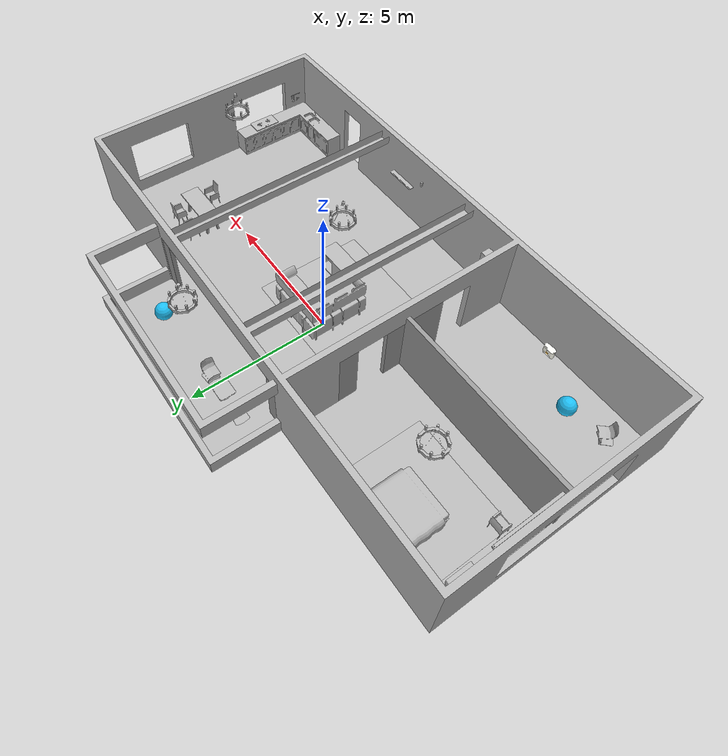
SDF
<sdf version="1.6">
 <world name="default">
  <gravity>0 0 -9.8</gravity>
  <magnetic_field>6e-06 2.3e-05 -4.2e-05</magnetic_field>
  <atmosphere type="adiabatic"/>
  <physics name="default_physics" default="0" type="ode">
   <max_step_size>0.001</max_step_size>
   <real_time_factor>1</real_time_factor>
   <real_time_update_rate>1000</real_time_update_rate>
  </physics>
  <scene>
   <ambient>0.4 0.4 0.4 1</ambient>
   <background>0.7 0.7 0.7 1</background>
   <shadows>false</shadows>
   <grid>false</grid>
   <origin_visual>false</origin_visual>
  </scene>
  <spherical_coordinates>
   <surface_model>EARTH_WGS84</surface_model>
   <latitude_deg>0</latitude_deg>
   <longitude_deg>0</longitude_deg>
   <elevation>0</elevation>
   <heading_deg>0</heading_deg>
  </spherical_coordinates>
  <model name="AirconditionerA_01_001">
   <include><uri>model://aws_robomaker_residential_AirconditionerA_01</uri></include>
   <pose>-9.199410 2.411230 2.084544 0 -0 0</pose>
  </model>
  <model name="AirconditionerB_01_001">
   <include><uri>model://aws_robomaker_residential_AirconditionerB_01</uri></include>
   <pose>-2.004656 -5.226610 0.003485 0 -0 0</pose>
  </model>
  <model name="Ball_01_001">
   <include><uri>model://aws_robomaker_residential_Ball_01</uri></include>
   <pose>3.295503 4.225674 0.318684 0 -0 0</pose>
  </model>
  <model name="Ball_01_003">
   <include><uri>model://aws_robomaker_residential_Ball_01</uri></include>
   <pose>-6.945503 -4.22174 0.318684 0 -0 0</pose>
  </model>
  <model name="Bed_01_001">
   <include><uri>model://aws_robomaker_residential_Bed_01</uri></include>
   <pose>-6.678232 2.030560 -0.000010 0 -0 0</pose>
  </model>
  <model name="NightStand_01_001">
   <include><uri>model://aws_robomaker_residential_NightStand_01</uri></include>
   <pose>-8.501616 2.860420 0.005258 -0.000002 0 0</pose>
  </model>
  <model name="NightStand_01_002">
   <include><uri>model://aws_robomaker_residential_NightStand_01</uri></include>
   <pose>-4.842234 2.860420 0.005256 0 0.000002 0</pose>
  </model>
  <model name="Board_01_001">
   <include><uri>model://aws_robomaker_residential_Board_01</uri></include>
   <pose>2.779073 -5.392703 1.538173 0 -0 0</pose>
  </model>
  <model name="ChairA_01_001">
   <include><uri>model://aws_robomaker_residential_ChairA_01</uri></include>
   <pose>7.11516 0.209028 0.024685 1e-06 -0 -1.55607</pose>
  </model>
  <model name="ChairA_01_003">
   <include><uri>model://aws_robomaker_residential_ChairA_01</uri></include>
   <pose>6.06678 1.68075 0.01 0 -0 1.56986</pose>
  </model>
  <model name="ChairA_01_004">
   <include><uri>model://aws_robomaker_residential_ChairA_01</uri></include>
   <pose>7.00277 1.67074 0 0 -0 1.52363</pose>
  </model>
  <model name="ChairA_01_005">
   <include><uri>model://aws_robomaker_residential_ChairA_01</uri></include>
   <pose>-8.500940 0.033744 0 0 0 1.57</pose>
  </model>
  <model name="ChairD_01_001">
   <include><uri>model://aws_robomaker_residential_ChairD_01</uri></include>
   <pose>-1.380775 4.104456 0 0 -0 0</pose>
  </model>
  <model name="ChairD_01_002">
   <include><uri>model://aws_robomaker_residential_ChairD_01</uri></include>
   <pose>0.325214 4.104456 0 0 -0 -3.138741</pose>
  </model>
  <model name="ChairD_01_003">
   <include><uri>model://aws_robomaker_residential_ChairD_01</uri></include>
   <pose>-8.270775 -4.504456 0 0 -0 0.869673</pose>
  </model>
  <model name="Chandelier_01_001">
   <include><uri>model://aws_robomaker_residential_Chandelier_01</uri></include>
   <pose>1.221061 4.155740 3 0 -0 0</pose>
  </model>
  <model name="Chandelier_01_002">
   <include><uri>model://aws_robomaker_residential_Chandelier_01</uri></include>
   <pose>-6.451061 1.069937 3 0 -0 0</pose>
  </model>
  <model name="Chandelier_01_003">
   <include><uri>model://aws_robomaker_residential_Chandelier_01</uri></include>
   <pose>7.824061 -1.59 3 0 -0 0</pose>
  </model>
  <model name="Chandelier_01_004">
   <include><uri>model://aws_robomaker_residential_Chandelier_01</uri></include>
   <pose>1.221061 -1.592040 3 0 -0 0</pose>
  </model>
  <model name="Carpet_01_001">
   <include><uri>model://aws_robomaker_residential_Carpet_01</uri></include>
   <pose>0.785050 -1.106647 0.001106 0 -0 0</pose>
  </model>
  <model name="Carpet_01_002">
   <include><uri>model://aws_robomaker_residential_Carpet_01</uri></include>
   <pose>-6.674063 1.37515 0.000585 0 -0 1.57662</pose>
  </model>
  <model name="CoffeeTable_01_001">
   <include><uri>model://aws_robomaker_residential_CoffeeTable_01</uri></include>
   <pose>1.512301 -1.733438 0.041983 0.000000 0.000000 0.01000</pose>
  </model>
  <model name="CookingBench_01_001">
   <include><uri>model://aws_robomaker_residential_CookingBench_01</uri></include>
   <pose>9.038383 -3.351140 0.903610 0 -0 3.137133</pose>
   <static>true</static>
  </model>
  <model name="Curtain_01_001">
   <include><uri>model://aws_robomaker_residential_Curtain_01</uri></include>
   <pose>-9.172642 0.203760 0 0 -0 0</pose>
  </model>
  <model name="KitchenTable_01_001">
   <include><uri>model://aws_robomaker_residential_KitchenTable_01</uri></include>
   <pose>6.55269 0.951173 -0.000006 0 -0 -1.564130</pose>
  </model>
  <model name="BalconyTable_01_001">
   <include><uri>model://aws_robomaker_residential_BalconyTable_01</uri></include>
   <pose>-0.556240 4.111241 0 0 -0 0</pose>
  </model>
  <model name="HouseWallB_01_001">
   <include><uri>model://aws_robomaker_residential_HouseWallB_01</uri></include>
  </model>
  <model name="FloorB_01_001"><include><uri>model://aws_robomaker_residential_FloorB_01</uri></include></model>
  <model name="KitchenCabinet_01_001">
   <include><uri>model://aws_robomaker_residential_KitchenCabinet_01</uri></include>
   <pose>8.002009 -3.836509 0.012068 0 -0 -3.140001</pose>
  </model>
  <model name="KitchenUtensils_01_001">
   <include><uri>model://aws_robomaker_residential_KitchenUtensils_01</uri></include>
   <pose>9.285478 -5.021261 1.141805 0 -0 0</pose>
  </model>
  <model name="LightC_01_001">
   <include><uri>model://aws_robomaker_residential_LightC_01</uri></include>
   <pose>1.769567 -5.4443710 2.000000 0 -0 0</pose>
  </model>
  <model name="LightC_01_002">
   <include><uri>model://aws_robomaker_residential_LightC_01</uri></include>
   <pose>-0.138245 -5.4443710 2.000000 0 -0 0</pose>
  </model>
  <model name="SofaC_01_001">
   <include><uri>model://aws_robomaker_residential_SofaC_01</uri></include>
   <pose>0.775898 -0.411153 0.065992 -0.000464 -0.000071 0.005614</pose>
  </model>
  <light name="LivingRoom_CeilingLight_0" type="point">
   <pose>1.194296 4.155759 2.2 0 -0 0</pose>
   <diffuse>0.5 0.5 0.5 1</diffuse>
   <specular>0.1 0.1 0.1 1</specular>
   <attenuation>
    <range>20</range>
    <constant>0.32</constant>
    <linear>0.01</linear>
    <quadratic>0.03</quadratic>
   </attenuation>
   <cast_shadows>0</cast_shadows>
   <direction>0 0 -1</direction>
  </light>
  <light name="LivingRoom_CeilingLight_1" type="point">
   <pose>1.194296 -1.589959 2.2 0 -0 0</pose>
   <diffuse>0.5 0.5 0.5 1</diffuse>
   <specular>0.1 0.1 0.1 1</specular>
   <attenuation>
    <range>20</range>
    <constant>0.05</constant>
    <linear>0.01</linear>
    <quadratic>0.09</quadratic>
   </attenuation>
   <cast_shadows>0</cast_shadows>
   <direction>0 0 -1</direction>
  </light>
  <light name="LivingRoom_WallLight_0" type="point">
   <pose>1.76956 -5.444370 2.2 0 -0 0</pose>
   <diffuse>0.24 0.24 0.24 1</diffuse>
   <specular>0.1 0.1 0.1 1</specular>
   <attenuation>
    <range>20</range>
    <constant>0.12</constant>
    <linear>0.00</linear>
    <quadratic>0.03</quadratic>
   </attenuation>
   <direction>0 0 -1</direction>
  </light>
  <light name="LivingRoom_WallLight_1" type="point">
   <pose>-0.13826 -5.444370 2.2 0 -0 0</pose>
   <diffuse>0.24 0.24 0.24 1</diffuse>
   <specular>0.1 0.1 0.1 1</specular>
   <attenuation>
    <range>20</range>
    <constant>0.12</constant>
    <linear>0.00</linear>
    <quadratic>0.03</quadratic>
   </attenuation>
   <direction>0 0 -1</direction>
  </light>
  <light name="BedRoom_CeilingLight_0" type="point">
   <pose>-6.451061 1.126176 2.091116 0 -0 0</pose>
   <diffuse>0.5 0.5 0.5 1</diffuse>
   <specular>0.1 0.1 0.1 1</specular>
   <attenuation>
    <range>20</range>
    <constant>0.32</constant>
    <linear>0.01</linear>
    <quadratic>0.03</quadratic>
   </attenuation>
   <cast_shadows>0</cast_shadows>
   <direction>0 0 -1</direction>
  </light>
  <light name="BedRoom_CeilingLight_1" type="point">
   <pose>-6.352945 -3.416286 2.091116 0 -0 0</pose>
   <diffuse>0.5 0.5 0.5 1</diffuse>
   <specular>0.1 0.1 0.1 1</specular>
   <attenuation>
    <range>20</range>
    <constant>0.32</constant>
    <linear>0.01</linear>
    <quadratic>0.03</quadratic>
   </attenuation>
   <cast_shadows>0</cast_shadows>
   <direction>0 0 -1</direction>
  </light>
  <light name="Kitchen_CeilingLight_0" type="point">
   <pose>7.8582 -1.5905 2.280000 0 -0 0</pose>
   <diffuse>0.5 0.5 0.5 1</diffuse>
   <specular>0.1 0.1 0.1 1</specular>
   <attenuation>
    <range>20</range>
    <constant>0.3</constant>
    <linear>0.01</linear>
    <quadratic>0.01</quadratic>
   </attenuation>
   <cast_shadows>0</cast_shadows>
   <direction>0 0 -1</direction>
  </light>
  <model name="charging_pile">
   <include><uri>model://charging_pile</uri></include>
   <pose>-5.153056 -5.326687 0.016504 1.57 0 1.57</pose>
  </model>
  <model name="wall_01"><include><uri>model://wall_01</uri></include></model>
  <model name="wall_02"><include><uri>model://wall_02</uri></include></model>
  <model name="wall_03"><include><uri>model://wall_03</uri></include></model>
  <model name="wall_04"><include><uri>model://wall_04</uri></include></model>
  <model name="wall_05"><include><uri>model://wall_05</uri></include></model>
  <model name="wall_06"><include><uri>model://wall_06</uri></include></model>
 </world>
</sdf>

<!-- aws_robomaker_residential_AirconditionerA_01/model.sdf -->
<sdf version="1.6">
  <model name="aws_robomaker_residential_AirconditionerA_01">
    <link name="link">
      <inertial>
        <mass>1</mass>
      </inertial>
      <collision name="collision">
        <geometry>
          <mesh>
            <uri>model://models/aws_robomaker_residential_AirconditionerA_01/meshes/aws_AirconditionerA_01_collision.DAE</uri>
            <scale>1 1 1</scale>
          </mesh>
        </geometry>
      </collision>
      <visual name="visual">
	    <geometry>
          <mesh>
            <uri>model://models/aws_robomaker_residential_AirconditionerA_01/meshes/aws_AirconditionerA_01_visual.DAE</uri>
          </mesh>
        </geometry>
      <meta> <layer> 1 </layer></meta>
</visual>
    </link>
	<static>1</static>
  </model>
</sdf>

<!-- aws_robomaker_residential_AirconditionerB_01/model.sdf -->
<sdf version="1.6">
  <model name="aws_robomaker_residential_AirconditionerB_01">
    <link name="link">
      <inertial>
        <mass>1</mass>
      </inertial>
      <collision name="collision">
        <geometry>
          <mesh>
            <uri>model://models/aws_robomaker_residential_AirconditionerB_01/meshes/aws_AirconditionerB_01_collision.DAE</uri>
            <scale>1 1 1</scale>
          </mesh>
        </geometry>
      </collision>
      <visual name="visual">
	    <geometry>
          <mesh>
            <uri>model://models/aws_robomaker_residential_AirconditionerB_01/meshes/aws_AirconditionerB_01_visual.DAE</uri>
          </mesh>
        </geometry>
      <meta> <layer> 1 </layer></meta>
</visual>
    </link>
  </model>
</sdf>

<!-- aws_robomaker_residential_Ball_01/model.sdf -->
<sdf version="1.6">
  <model name="aws_robomaker_residential_Ball_01">
    <link name="link">
      <inertial>
        <mass>0.12</mass>

          <inertia>
            <ixx>0.030752</ixx>
            <ixy>0</ixy>
            <ixz>0</ixz>
            <iyy>0.030752</iyy>
            <iyz>0</iyz>
            <izz>0.030752</izz>
          </inertia>
      </inertial>
      <collision name="collision">

        <geometry>

          <sphere>
            <radius>0.31 </radius>
          </sphere>

        </geometry>

        <surface>
          <friction>
            <ode>
              <mu>0.85</mu>
              <mu2>0.85</mu2>
            </ode>
          </friction>

          <contact>
            <ode>
              <kd>8500</kd>
              <max_vel>5.1</max_vel>
            </ode>
          </contact>
        </surface>

      </collision>
      <visual name="visual">
	    <geometry>

          <sphere>
            <radius>0.31 </radius>
          </sphere>
      </geometry>
          <material>
            <diffuse>0.12 0.76 0.97 1</diffuse>
            <ambient>0.03 0.21 0.27 1</ambient>
          </material>

      <meta> <layer> 1 </layer></meta>
</visual>
    </link>
  </model>
</sdf>

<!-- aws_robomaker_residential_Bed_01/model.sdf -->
<sdf version="1.6">
  <model name="aws_robomaker_residential_Bed_01">
    <link name="link">
      <inertial>
        <mass>22.6</mass>
      </inertial>
      <collision name="collision">
        <geometry>
          <mesh>
            <uri>model://models/aws_robomaker_residential_Bed_01/meshes/aws_Bed_01_collision.DAE</uri>
            <scale>1 1 1</scale>
          </mesh>
        </geometry>
      </collision>
      <visual name="visual">
	    <geometry>
          <mesh>
            <uri>model://models/aws_robomaker_residential_Bed_01/meshes/aws_Bed_01_visual.DAE</uri>
          </mesh>
        </geometry>
      <meta> <layer> 1 </layer></meta>
</visual>
    </link>
  <static>1</static>
  </model>
</sdf>

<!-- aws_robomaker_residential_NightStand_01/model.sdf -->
<sdf version="1.6">
  <model name="aws_robomaker_residential_NightStand_01">
    <link name="link">
      <inertial>
        <mass>13.6</mass>

        <inertia>
          <ixx>0.6165</ixx>
          <ixy>0</ixy>
          <ixz>0</ixz>
          <iyy>1.29664</iyy>
          <iyz>0</iyz>
          <izz>0.7706</izz>
        </inertia>

      </inertial>
      <collision name="collision">
        <geometry>
          <mesh>
            <uri>model://models/aws_robomaker_residential_NightStand_01/meshes/aws_NightStand_01_collision.DAE</uri>
            <scale>1 1 1</scale>
          </mesh>
        </geometry>
      </collision>
      <visual name="visual">
	    <geometry>
          <mesh>
            <uri>model://models/aws_robomaker_residential_NightStand_01/meshes/aws_NightStand_01_visual.DAE</uri>
          </mesh>
        </geometry>
      <meta> <layer> 1 </layer></meta>
</visual>
    </link>
    <static>1</static>
  </model>
</sdf>

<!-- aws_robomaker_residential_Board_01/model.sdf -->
<sdf version="1.6">
  <model name="aws_robomaker_residential_Board_01">
    <link name="link">
      <inertial>
        <mass>1</mass>
      </inertial>
      <collision name="collision">
        <geometry>
          <mesh>
            <uri>model://models/aws_robomaker_residential_Board_01/meshes/aws_Board_01_collision.DAE</uri>
            <scale>1 1 1</scale>
          </mesh>
        </geometry>
      </collision>
      <visual name="visual">
	    <geometry>
          <mesh>
            <uri>model://models/aws_robomaker_residential_Board_01/meshes/aws_Board_01_visual.DAE</uri>
          </mesh>
        </geometry>
      <meta> <layer> 2 </layer></meta>
</visual>
    </link>

    <static>1</static>
  </model>
</sdf>

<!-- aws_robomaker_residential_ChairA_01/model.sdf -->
<sdf version="1.6">
  <model name="aws_robomaker_residential_ChairA_01">
    <link name="link">
      <inertial>
          <mass>7.5</mass>
          <inertia>
            <ixy>0</ixy>
            <ixz>0</ixz>
            <iyz>0</iyz>
            <ixx>0.217</ixx>
            <iyy>0.217</iyy>
            <izz>0.067</izz>
          </inertia>
      </inertial>

      <collision name="collision">
        <geometry>
          <mesh>
            <uri>model://models/aws_robomaker_residential_ChairA_01/meshes/aws_ChairA_01_collision.DAE</uri>
            <scale>1 1 1</scale>
          </mesh>
        </geometry>
      </collision>
      <visual name="visual">
	    <geometry>
          <mesh>
            <uri>model://models/aws_robomaker_residential_ChairA_01/meshes/aws_ChairA_01_visual.DAE</uri>
          </mesh>
        </geometry>
      <meta> <layer> 1 </layer></meta>
</visual>
    </link>
  </model>
</sdf>

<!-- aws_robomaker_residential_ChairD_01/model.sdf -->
<sdf version="1.6">
  <model name="aws_robomaker_residential_ChairD_01">
    <link name="link">

      <inertial>

        <mass>4.5</mass>
          <inertia>
            <ixy>0</ixy>
            <ixz>0</ixz>
            <iyz>0</iyz>
            <ixx>0.217</ixx>
            <iyy>0.217</iyy>
            <izz>0.067</izz>
          </inertia>
      </inertial>

      <collision name="collision">

        <geometry>
          <mesh>
            <uri>model://models/aws_robomaker_residential_ChairD_01/meshes/aws_ChairD_01_collision.DAE</uri>
            <scale>1 1 1</scale>
          </mesh>
        </geometry>

      </collision>
      <visual name="visual">
	    <geometry>
          <mesh>
            <uri>model://models/aws_robomaker_residential_ChairD_01/meshes/aws_ChairD_01_visual.DAE</uri>
          </mesh>
        </geometry>
      <meta> <layer> 1 </layer></meta>
</visual>
    </link>
  </model>
</sdf>

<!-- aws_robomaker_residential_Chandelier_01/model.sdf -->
<sdf version="1.6">
  <model name="aws_robomaker_residential_Chandelier_01">
    <link name="link">
      <inertial>
        <mass>1</mass>
      </inertial>
      <collision name="collision">
        <geometry>
          <mesh>
            <uri>model://models/aws_robomaker_residential_Chandelier_01/meshes/aws_Chandelier_01_collision.DAE</uri>
            <scale>1 1 1</scale>
          </mesh>
        </geometry>
      </collision>
      <visual name="visual">
	    <geometry>
          <mesh>
            <uri>model://models/aws_robomaker_residential_Chandelier_01/meshes/aws_Chandelier_01_visual.DAE</uri>
          </mesh>
        </geometry>
      <meta> <layer> 2 </layer></meta>
</visual>
    </link>
	<static>1</static>
  </model>
</sdf>

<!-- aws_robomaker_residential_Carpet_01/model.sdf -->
<sdf version="1.6">
  <model name="aws_robomaker_residential_Carpet_01">
    <link name="link">
      <inertial>
        <mass>8.1</mass>
      </inertial>

      <collision name="collision">

        <geometry>
          <mesh>
            <uri>model://models/aws_robomaker_residential_Carpet_01/meshes/aws_Carpet_01_collision.DAE</uri>

            <scale>1 1 0.95</scale>
          </mesh>
        </geometry>

        <surface>

          <contact>
            <ode>

            </ode>
          </contact>
        </surface>

        <pose>0 0 -0.01 0 0 0 </pose>
      </collision>

      <visual name="visual">
	    <geometry>
          <mesh>
            <uri>model://models/aws_robomaker_residential_Carpet_01/meshes/aws_Carpet_01_visual.DAE</uri>
          </mesh>
        </geometry>
      <meta> <layer> 1 </layer></meta>
</visual>
    </link>

    <static>1</static>

  </model>
</sdf>

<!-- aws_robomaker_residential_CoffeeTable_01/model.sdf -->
<sdf version="1.6">
  <model name="aws_robomaker_residential_CoffeeTable_01">
    <link name="link">
      <inertial>
        <mass>21.7</mass>

        <inertia>
          <ixx>0.8137499999999998</ixx>
          <ixy>0</ixy>
          <ixz>0</ixz>
          <iyy>2.76675</iyy>
          <iyz>0</iyz>
          <izz>3.254</izz>
        </inertia>

      </inertial>

      <collision name="collision">
        <geometry>
          <mesh>
            <uri>model://aws_robomaker_residential_CoffeeTable_01/meshes/aws_CoffeeTable_01_collision.DAE</uri>
            <scale>1 1 2.5</scale>
          </mesh>
        </geometry>

        <surface>
          <contact>
            <ode>
              <max_vel>0.01</max_vel>
            </ode>
          </contact>
         </surface>
      </collision>

      <visual name="visual">
	    <geometry>
          <mesh>
            <uri>model://aws_robomaker_residential_CoffeeTable_01/meshes/aws_CoffeeTable_01_visual.DAE</uri>
            <scale>1 1 2.5</scale>
          </mesh>
        </geometry>
      <meta> <layer> 1 </layer></meta>
</visual>
    </link>
    <static>1</static>
  </model>
</sdf>

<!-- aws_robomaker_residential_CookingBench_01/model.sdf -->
<sdf version="1.6">
  <model name="aws_robomaker_residential_CookingBench_01">
    <link name="link">
      <inertial>
        <mass>1</mass>
      </inertial>
      <collision name="collision">
        <geometry>
          <mesh>
            <uri>model://models/aws_robomaker_residential_CookingBench_01/meshes/aws_CookingBench_01_collision.DAE</uri>
            <scale>1 1 1</scale>
          </mesh>
        </geometry>
      </collision>
      <visual name="visual">
	    <geometry>
          <mesh>
            <uri>model://models/aws_robomaker_residential_CookingBench_01/meshes/aws_CookingBench_01_visual.DAE</uri>
          </mesh>
        </geometry>
      <meta> <layer> 1 </layer></meta>
</visual>
    </link>
  </model>
</sdf>

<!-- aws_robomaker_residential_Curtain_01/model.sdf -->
<sdf version="1.6">
  <model name="aws_robomaker_residential_Curtain_01">
    <link name="link">
      <inertial>
        <mass>1</mass>
      </inertial>
      <collision name="collision">
        <geometry>
          <mesh>
            <uri>model://models/aws_robomaker_residential_Curtain_01/meshes/aws_Curtain_01_collision.DAE</uri>
            <scale>1 1 1</scale>
          </mesh>
        </geometry>
      </collision>
      <visual name="visual">
	    <geometry>
          <mesh>
            <uri>model://models/aws_robomaker_residential_Curtain_01/meshes/aws_Curtain_01_visual.DAE</uri>
          </mesh>
        </geometry>
      <meta> <layer> 2 </layer></meta>
</visual>
    </link>
	<static>1</static>
  </model>
</sdf>

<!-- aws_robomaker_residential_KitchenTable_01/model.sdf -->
<sdf version="1.6">
  <model name="aws_robomaker_residential_KitchenTable_01">
    <link name="link">
      <inertial>
        <mass>12.3</mass>
      </inertial>
      <visual name="visual">
	    <geometry>
          <mesh>
            <uri>model://aws_robomaker_residential_KitchenTable_01/meshes/aws_KitchenTable_01_visual.DAE</uri>
          </mesh>
        </geometry>
      <meta> <layer> 1 </layer></meta>
</visual>
    </link>
  </model>
</sdf>

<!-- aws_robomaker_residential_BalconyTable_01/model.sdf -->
<sdf version="1.6">
  <model name="aws_robomaker_residential_BalconyTable_01">
    <link name="link">
      <inertial>
        <mass>15</mass>
      </inertial>
      <collision name="collision">
        <geometry>
          <mesh>
            <uri>model://models/aws_robomaker_residential_BalconyTable_01/meshes/aws_BalconyTable_01_collision.DAE</uri>
            <scale>1 1 1</scale>
          </mesh>
        </geometry>
      </collision>
      <visual name="visual">
	    <geometry>
          <mesh>
            <uri>model://models/aws_robomaker_residential_BalconyTable_01/meshes/aws_BalconyTable_01_visual.DAE</uri>
          </mesh>
        </geometry>
      <meta> <layer> 1 </layer></meta>
</visual>
    </link>
  </model>
</sdf>

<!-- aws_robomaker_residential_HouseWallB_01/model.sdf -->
<sdf version="1.6">
  <model name="aws_robomaker_residential_HouseWallB_01">
    <link name="link">
      <inertial>
        <mass>1</mass>
      </inertial>
      <collision name="collision">
        <geometry>
          <mesh>
            <uri>model://models/aws_robomaker_residential_HouseWallB_01/meshes/aws_HouseWallB_01_collision.DAE</uri>
            <scale>1 1 1</scale>
          </mesh>
        </geometry>
      </collision>
      <visual name="visual">
	    <geometry>
          <mesh>
            <uri>model://models/aws_robomaker_residential_HouseWallB_01/meshes/aws_HouseWallB_01_visual.DAE</uri>
          </mesh>
        </geometry>
      <meta> <layer> 2 </layer></meta>
</visual>
    </link>
<static>1</static>
  </model>
</sdf>

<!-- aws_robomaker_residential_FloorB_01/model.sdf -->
<sdf version="1.6">
  <model name="aws_robomaker_residential_FloorB_01">
    <link name="link">
      <inertial>
        <mass>100</mass>
      </inertial>

      <collision name="collision">
        <geometry>
          <mesh>
            <uri>model://models/aws_robomaker_residential_FloorB_01/meshes/aws_FloorB_01_collision.DAE</uri>
            <scale>1 1 0.9</scale>
          </mesh>
        </geometry>

        <surface>

          <friction>
            <ode>
              <mu>0.6</mu>
              <mu2>0.6</mu2>
            </ode>
          </friction>

        </surface>

      </collision>

      <visual name="visual">
	    <geometry>
          <mesh>
            <uri>model://models/aws_robomaker_residential_FloorB_01/meshes/aws_FloorB_01_visual.DAE</uri>
          </mesh>
        </geometry>
      <meta> <layer> 1 </layer></meta>
</visual>
    </link>

	<static>1</static>
  </model>
</sdf>

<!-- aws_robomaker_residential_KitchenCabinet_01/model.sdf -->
<sdf version="1.6">
  <model name="aws_robomaker_residential_KitchenCabinet_01">
    <link name="link">
      <inertial>
        <mass>1</mass>
      </inertial>
      <collision name="collision">
        <laser_retro>0</laser_retro>
        <max_contacts>10</max_contacts>

        <geometry>
          <mesh>
            <uri>model://models/aws_robomaker_residential_KitchenCabinet_01/meshes/aws_KitchenCabinet_01_collision.DAE</uri>
            <scale>1 1 1</scale>
          </mesh>
        </geometry>
      </collision>
      <visual name="visual">
	    <geometry>
          <mesh>
            <uri>model://models/aws_robomaker_residential_KitchenCabinet_01/meshes/aws_KitchenCabinet_01_visual.DAE</uri>
          </mesh>
        </geometry>
      <meta> <layer> 1 </layer></meta>
</visual>
    </link>

    <static>1</static>
  </model>
</sdf>

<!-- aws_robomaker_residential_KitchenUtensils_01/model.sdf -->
<sdf version="1.6">
  <model name="aws_robomaker_residential_KitchenUtensils_01">
    <link name="link">
      <inertial>
        <mass>1</mass>
      </inertial>
      <collision name="collision">
        <geometry>
          <mesh>
            <uri>model://models/aws_robomaker_residential_KitchenUtensils_01/meshes/aws_KitchenUtensils_01_collision.DAE</uri>
            <scale>1 1 1</scale>
          </mesh>
        </geometry>
      </collision>
      <visual name="visual">
	    <geometry>
          <mesh>
            <uri>model://models/aws_robomaker_residential_KitchenUtensils_01/meshes/aws_KitchenUtensils_01_visual.DAE</uri>
          </mesh>
        </geometry>
      <meta> <layer> 1 </layer></meta>
</visual>
    </link>
	<static>1</static>
  </model>
</sdf>

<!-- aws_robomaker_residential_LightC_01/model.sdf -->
<sdf version="1.6">
  <model name="aws_robomaker_residential_LightC_01">
    <link name="link">
      <inertial>
        <mass>1</mass>
      </inertial>
      <collision name="collision">
        <geometry>
          <mesh>
            <uri>model://models/aws_robomaker_residential_LightC_01/meshes/aws_LightC_01_collision.DAE</uri>
            <scale>1 1 1</scale>
          </mesh>
        </geometry>
      </collision>
      <visual name="visual">
	    <geometry>
          <mesh>
            <uri>model://models/aws_robomaker_residential_LightC_01/meshes/aws_LightC_01_visual.DAE</uri>
          </mesh>
        </geometry>
      <meta> <layer> 2 </layer></meta>
</visual>
    </link>
	<static>1</static>
  </model>
</sdf>

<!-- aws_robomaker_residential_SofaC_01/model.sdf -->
<sdf version="1.6">
  <model name="aws_robomaker_residential_SofaC_01">
    <link name="link">
      <inertial>
        <mass>40</mass>
      </inertial>
      <collision name="collision">
        <geometry>
          <mesh>
            <uri>model://aws_robomaker_residential_SofaC_01/meshes/aws_SofaC_01_collision.DAE</uri>
            <scale>1 1 1.5</scale>
          </mesh>
        </geometry>
      </collision>
      <visual name="visual">
	    <geometry>
          <mesh>
            <uri>model://aws_robomaker_residential_SofaC_01/meshes/aws_SofaC_01_visual.DAE</uri>
            <scale>1 1 1.5</scale>
          </mesh>
        </geometry>
      <meta> <layer> 1 </layer></meta>
</visual>
    </link>
  </model>
</sdf>

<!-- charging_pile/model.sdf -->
<sdf version="1.6">
  <model name="Charging_Pile">
    <static>true</static>
    <link name="link">
      <collision name="collision">
        <geometry>
          <mesh>
            <scale>1 1 1</scale>
            <uri>model://charging_pile/meshes/charging.dae</uri>
          </mesh>
        </geometry>
      </collision>
      <visual name="visual">
        <geometry>
          <mesh>
            <scale>1 1 1</scale>
            <uri>model://charging_pile/meshes/charging.dae</uri>
          </mesh>
        </geometry>
      </visual>
    </link>
  </model>
</sdf>

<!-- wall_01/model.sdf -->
<sdf version='1.6'>
  <model name='wall_01'>
    <pose frame=''>-5.95985 -1.1921 0 0 -0 0</pose>
    <link name='Wall_0'>
      <collision name='Wall_0_Collision'>
        <geometry>
          <box>
            <size>6.75 0.15 2.5</size>
          </box>
        </geometry>
        <pose frame=''>0 0 1.25 0 -0 0</pose>
      </collision>
      <visual name='Wall_0_Visual'>
        <pose frame=''>0 0 1.25 0 -0 0</pose>
        <geometry>
          <box>
            <size>6.75 0.15 2.5</size>
          </box>
        </geometry>
        <material>
          <script>
            <uri>file://media/materials/scripts/gazebo.material</uri>
            <name>Gazebo/Grey</name>
          </script>
          <ambient>1 1 1 1</ambient>
        </material>
        <meta>
          <layer>0</layer>
        </meta>
      </visual>
      <pose frame=''>0 0 0 0 -0 0</pose>
    </link>
    <static>1</static>
  </model>
</sdf>

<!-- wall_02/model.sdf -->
<sdf version='1.6'>
  <model name='wall_02'>
    <pose frame=''>-2.60533 -1.87112 0 0 -0 0</pose>
    <link name='Wall_0'>
      <collision name='Wall_0_Collision'>
        <geometry>
          <box>
            <size>1.5 0.15 2.5</size>
          </box>
        </geometry>
        <pose frame=''>0 0 1.25 0 -0 0</pose>
      </collision>
      <visual name='Wall_0_Visual'>
        <pose frame=''>0 0 1.25 0 -0 0</pose>
        <geometry>
          <box>
            <size>1.5 0.15 2.5</size>
          </box>
        </geometry>
        <material>
          <script>
            <uri>file://media/materials/scripts/gazebo.material</uri>
            <name>Gazebo/Grey</name>
          </script>
          <ambient>1 1 1 1</ambient>
        </material>
        <meta>
          <layer>0</layer>
        </meta>
      </visual>
      <pose frame=''>0 0 0 0 -0 1.5708</pose>
    </link>
    <static>1</static>
  </model>
</sdf>

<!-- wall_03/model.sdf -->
<sdf version='1.6'>
  <model name='wall_03'>
    <pose frame=''>-2.60376 -0.790134 0 0 -0 0</pose>
    <link name='Wall_0'>
      <collision name='Wall_0_Collision'>
        <geometry>
          <box>
            <size>0.668 0.15 2.5</size>
          </box>
        </geometry>
        <pose frame=''>0 0 1.25 0 -0 0</pose>
      </collision>
      <visual name='Wall_0_Visual'>
        <pose frame=''>0 0 1.25 0 -0 0</pose>
        <geometry>
          <box>
            <size>0.668 0.15 2.5</size>
          </box>
        </geometry>
        <material>
          <script>
            <uri>file://media/materials/scripts/gazebo.material</uri>
            <name>Gazebo/Grey</name>
          </script>
          <ambient>1 1 1 1</ambient>
        </material>
        <meta>
          <layer>0</layer>
        </meta>
      </visual>
      <pose frame=''>0 0 0 0 -0 1.5708</pose>
    </link>
    <static>1</static>
  </model>
</sdf>

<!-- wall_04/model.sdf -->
<sdf version='1.6'>
  <model name='wall_04'>
    <pose frame=''>-2.61809 0.959165 0 0 -0 0</pose>
    <link name='Wall_0'>
      <collision name='Wall_0_Collision'>
        <geometry>
          <box>
            <size>0.68 0.15 2.5</size>
          </box>
        </geometry>
        <pose frame=''>0 0 1.25 0 -0 0</pose>
      </collision>
      <visual name='Wall_0_Visual'>
        <pose frame=''>0 0 1.25 0 -0 0</pose>
        <geometry>
          <box>
            <size>0.68 0.15 2.5</size>
          </box>
        </geometry>
        <material>
          <script>
            <uri>file://media/materials/scripts/gazebo.material</uri>
            <name>Gazebo/Grey</name>
          </script>
          <ambient>1 1 1 1</ambient>
        </material>
        <meta>
          <layer>0</layer>
        </meta>
      </visual>
      <pose frame=''>0 0 0 0 -0 1.5708</pose>
    </link>
    <static>1</static>
  </model>
</sdf>

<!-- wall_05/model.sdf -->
<sdf version='1.6'>
  <model name='wall_05'>
    <pose frame=''>-2.10378 3.18281 0 0 -0 0</pose>
    <link name='Wall_0'>
      <collision name='Wall_0_Collision'>
        <geometry>
          <box>
            <size>0.6 0.15 2.5</size>
          </box>
        </geometry>
        <pose frame=''>0 0 1.25 0 -0 0</pose>
      </collision>
      <visual name='Wall_0_Visual'>
        <pose frame=''>0 0 1.25 0 -0 0</pose>
        <geometry>
          <box>
            <size>0.6 0.15 2.5</size>
          </box>
        </geometry>
        <material>
          <script>
            <uri>file://media/materials/scripts/gazebo.material</uri>
            <name>Gazebo/Grey</name>
          </script>
          <ambient>1 1 1 1</ambient>
        </material>
        <meta>
          <layer>0</layer>
        </meta>
      </visual>
      <pose frame=''>0 0 0 0 -0 0</pose>
    </link>
    <static>1</static>
  </model>
</sdf>

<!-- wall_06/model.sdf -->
<sdf version='1.6'>
  <model name='wall_06'>
    <pose frame=''>4.43465 3.18847 0 0 -0 0</pose>
    <link name='Wall_2'>
      <collision name='Wall_2_Collision'>
        <geometry>
          <box>
            <size>0.5 0.15 2.5</size>
          </box>
        </geometry>
        <pose frame=''>0 0 1.25 0 -0 0</pose>
      </collision>
      <visual name='Wall_2_Visual'>
        <pose frame=''>0 0 1.25 0 -0 0</pose>
        <geometry>
          <box>
            <size>0.5 0.15 2.5</size>
          </box>
        </geometry>
        <material>
          <script>
            <uri>file://media/materials/scripts/gazebo.material</uri>
            <name>Gazebo/Grey</name>
          </script>
          <ambient>1 1 1 1</ambient>
        </material>
        <meta>
          <layer>0</layer>
        </meta>
      </visual>
      <pose frame=''>0 0 0 0 -0 3.14159</pose>
    </link>
    <static>1</static>
  </model>
</sdf>
